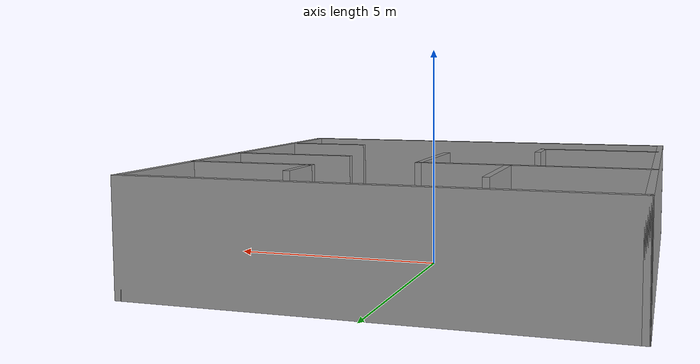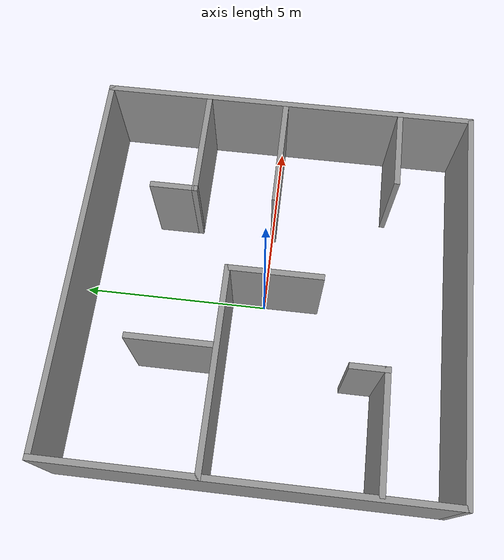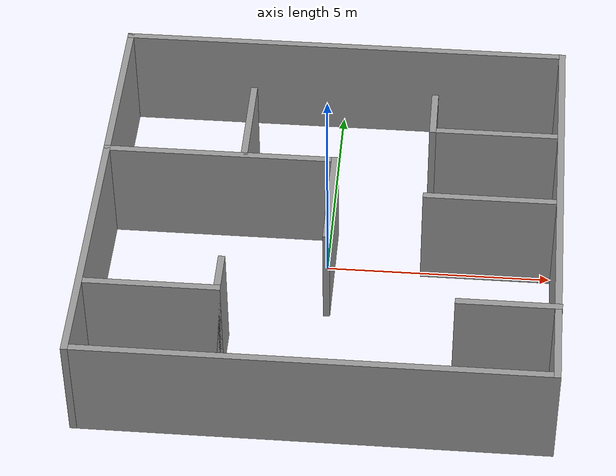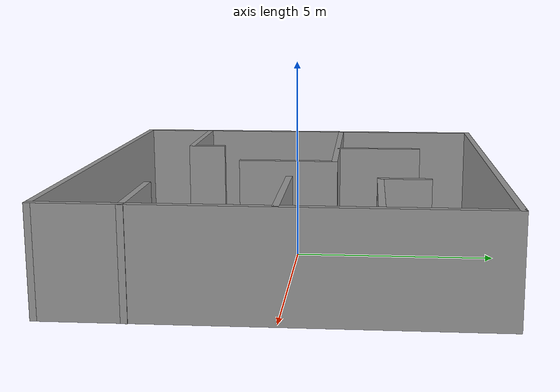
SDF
<?xml version='1.0'?>
<sdf version='1.7'>
  <model name='maze_run'>
    <pose>0.038376 -0.112216 0 0 -0 0</pose>
    <link name='Wall_11'>
      <collision name='Wall_11_Collision'>
        <geometry>
          <box>
            <size>3 0.15 2.5</size>
          </box>
        </geometry>
        <pose>0 0 1.25 0 -0 0</pose>
      </collision>
      <visual name='Wall_11_Visual'>
        <pose>0 0 1.25 0 -0 0</pose>
        <geometry>
          <box>
            <size>3 0.15 2.5</size>
          </box>
        </geometry>
        <material>
          <script>
            <uri>file://media/materials/scripts/gazebo.material</uri>
            <name>Gazebo/Grey</name>
          </script>
          <ambient>1 1 1 1</ambient>
        </material>
        <meta>
          <layer>0</layer>
        </meta>
      </visual>
      <pose>-3.55104 -3.02359 0 0 -0 0</pose>
    </link>
    <link name='Wall_12'>
      <collision name='Wall_12_Collision'>
        <geometry>
          <box>
            <size>1 0.15 2.5</size>
          </box>
        </geometry>
        <pose>0 0 1.25 0 -0 0</pose>
      </collision>
      <visual name='Wall_12_Visual'>
        <pose>0 0 1.25 0 -0 0</pose>
        <geometry>
          <box>
            <size>1 0.15 2.5</size>
          </box>
        </geometry>
        <material>
          <script>
            <uri>file://media/materials/scripts/gazebo.material</uri>
            <name>Gazebo/Grey</name>
          </script>
          <ambient>1 1 1 1</ambient>
        </material>
        <meta>
          <layer>0</layer>
        </meta>
      </visual>
      <pose>-2.12604 -2.59859 0 0 -0 1.5708</pose>
    </link>
    <link name='Wall_14'>
      <collision name='Wall_14_Collision'>
        <geometry>
          <box>
            <size>5.25 0.15 2.5</size>
          </box>
        </geometry>
        <pose>0 0 1.25 0 -0 0</pose>
      </collision>
      <visual name='Wall_14_Visual'>
        <pose>0 0 1.25 0 -0 0</pose>
        <geometry>
          <box>
            <size>5.25 0.15 2.5</size>
          </box>
        </geometry>
        <material>
          <script>
            <uri>file://media/materials/scripts/gazebo.material</uri>
            <name>Gazebo/Grey</name>
          </script>
          <ambient>1 1 1 1</ambient>
        </material>
        <meta>
          <layer>0</layer>
        </meta>
      </visual>
      <pose>-2.50695 1.06242 0 0 -0 0</pose>
    </link>
    <link name='Wall_15'>
      <collision name='Wall_15_Collision'>
        <geometry>
          <box>
            <size>2.5 0.15 2.5</size>
          </box>
        </geometry>
        <pose>0 0 1.25 0 -0 0</pose>
      </collision>
      <visual name='Wall_15_Visual'>
        <pose>0 0 1.25 0 -0 0</pose>
        <geometry>
          <box>
            <size>2.5 0.15 2.5</size>
          </box>
        </geometry>
        <material>
          <script>
            <uri>file://media/materials/scripts/gazebo.material</uri>
            <name>Gazebo/Grey</name>
          </script>
          <ambient>1 1 1 1</ambient>
        </material>
        <meta>
          <layer>0</layer>
        </meta>
      </visual>
      <pose>0.043053 -0.112575 0 0 -0 -1.5708</pose>
    </link>
    <link name='Wall_17'>
      <collision name='Wall_17_Collision'>
        <geometry>
          <box>
            <size>2.25 0.15 2.5</size>
          </box>
        </geometry>
        <pose>0 0 1.25 0 -0 0</pose>
      </collision>
      <visual name='Wall_17_Visual'>
        <pose>0 0 1.25 0 -0 0</pose>
        <geometry>
          <box>
            <size>2.25 0.15 2.5</size>
          </box>
        </geometry>
        <material>
          <script>
            <uri>file://media/materials/scripts/gazebo.material</uri>
            <name>Gazebo/Grey</name>
          </script>
          <ambient>1 1 1 1</ambient>
        </material>
        <meta>
          <layer>0</layer>
        </meta>
      </visual>
      <pose>-1.98232 2.19334 0 0 -0 1.5708</pose>
    </link>
    <link name='Wall_19'>
      <collision name='Wall_19_Collision'>
        <geometry>
          <box>
            <size>3 0.15 2.5</size>
          </box>
        </geometry>
        <pose>0 0 1.25 0 -0 0</pose>
      </collision>
      <visual name='Wall_19_Visual'>
        <pose>0 0 1.25 0 -0 0</pose>
        <geometry>
          <box>
            <size>3 0.15 2.5</size>
          </box>
        </geometry>
        <material>
          <script>
            <uri>file://media/materials/scripts/gazebo.material</uri>
            <name>Gazebo/Grey</name>
          </script>
          <ambient>1 1 1 1</ambient>
        </material>
        <meta>
          <layer>0</layer>
        </meta>
      </visual>
      <pose>3.59149 2.19518 0 0 -0 3.14159</pose>
    </link>
    <link name='Wall_20'>
      <collision name='Wall_20_Collision'>
        <geometry>
          <box>
            <size>1.25 0.15 2.5</size>
          </box>
        </geometry>
        <pose>0 0 1.25 0 -0 0</pose>
      </collision>
      <visual name='Wall_20_Visual'>
        <pose>0 0 1.25 0 -0 0</pose>
        <geometry>
          <box>
            <size>1.25 0.15 2.5</size>
          </box>
        </geometry>
        <material>
          <script>
            <uri>file://media/materials/scripts/gazebo.material</uri>
            <name>Gazebo/Grey</name>
          </script>
          <ambient>1 1 1 1</ambient>
        </material>
        <meta>
          <layer>0</layer>
        </meta>
      </visual>
      <pose>2.16649 2.74518 0 0 -0 1.5708</pose>
    </link>
    <link name='Wall_22'>
      <collision name='Wall_22_Collision'>
        <geometry>
          <box>
            <size>3 0.15 2.5</size>
          </box>
        </geometry>
        <pose>0 0 1.25 0 -0 0</pose>
      </collision>
      <visual name='Wall_22_Visual'>
        <pose>0 0 1.25 0 -0 0</pose>
        <geometry>
          <box>
            <size>3 0.15 2.5</size>
          </box>
        </geometry>
        <material>
          <script>
            <uri>file://media/materials/scripts/gazebo.material</uri>
            <name>Gazebo/Grey</name>
          </script>
          <ambient>1 1 1 1</ambient>
        </material>
        <meta>
          <layer>0</layer>
        </meta>
      </visual>
      <pose>3.55104 0.091491 0 0 -0 3.14159</pose>
    </link>
    <link name='Wall_24'>
      <collision name='Wall_24_Collision'>
        <geometry>
          <box>
            <size>2.25 0.15 2.5</size>
          </box>
        </geometry>
        <pose>0 0 1.25 0 -0 0</pose>
      </collision>
      <visual name='Wall_24_Visual'>
        <pose>0 0 1.25 0 -0 0</pose>
        <geometry>
          <box>
            <size>2.25 0.15 2.5</size>
          </box>
        </geometry>
        <material>
          <script>
            <uri>file://media/materials/scripts/gazebo.material</uri>
            <name>Gazebo/Grey</name>
          </script>
          <ambient>1 1 1 1</ambient>
        </material>
        <meta>
          <layer>0</layer>
        </meta>
      </visual>
      <pose>4.00695 -3.02359 0 0 -0 3.14159</pose>
    </link>
    <link name='Wall_6'>
      <collision name='Wall_6_Collision'>
        <geometry>
          <box>
            <size>10 0.15 2.5</size>
          </box>
        </geometry>
        <pose>0 0 1.25 0 -0 0</pose>
      </collision>
      <visual name='Wall_6_Visual'>
        <pose>0 0 1.25 0 -0 0</pose>
        <geometry>
          <box>
            <size>10 0.15 2.5</size>
          </box>
        </geometry>
        <material>
          <script>
            <uri>file://media/materials/scripts/gazebo.material</uri>
            <name>Gazebo/Grey</name>
          </script>
          <ambient>1 1 1 1</ambient>
        </material>
        <meta>
          <layer>0</layer>
        </meta>
      </visual>
      <pose>-5.05695 -0 0 0 -0 1.5708</pose>
    </link>
    <link name='Wall_7'>
      <collision name='Wall_7_Collision'>
        <geometry>
          <box>
            <size>10.25 0.15 2.5</size>
          </box>
        </geometry>
        <pose>0 0 1.25 0 -0 0</pose>
      </collision>
      <visual name='Wall_7_Visual'>
        <pose>0 0 1.25 0 -0 0</pose>
        <geometry>
          <box>
            <size>10.25 0.15 2.5</size>
          </box>
        </geometry>
        <material>
          <script>
            <uri>file://media/materials/scripts/gazebo.material</uri>
            <name>Gazebo/Grey</name>
          </script>
          <ambient>1 1 1 1</ambient>
        </material>
        <meta>
          <layer>0</layer>
        </meta>
      </visual>
      <pose>-0.006947 4.925 0 0 -0 0</pose>
    </link>
    <link name='Wall_8'>
      <collision name='Wall_8_Collision'>
        <geometry>
          <box>
            <size>10 0.15 2.5</size>
          </box>
        </geometry>
        <pose>0 0 1.25 0 -0 0</pose>
      </collision>
      <visual name='Wall_8_Visual'>
        <pose>0 0 1.25 0 -0 0</pose>
        <geometry>
          <box>
            <size>10 0.15 2.5</size>
          </box>
        </geometry>
        <material>
          <script>
            <uri>file://media/materials/scripts/gazebo.material</uri>
            <name>Gazebo/Grey</name>
          </script>
          <ambient>1 1 1 1</ambient>
        </material>
        <meta>
          <layer>0</layer>
        </meta>
      </visual>
      <pose>5.04305 -0 0 0 -0 -1.5708</pose>
    </link>
    <link name='Wall_9'>
      <collision name='Wall_9_Collision'>
        <geometry>
          <box>
            <size>10.25 0.15 2.5</size>
          </box>
        </geometry>
        <pose>0 0 1.25 0 -0 0</pose>
      </collision>
      <visual name='Wall_9_Visual'>
        <pose>0 0 1.25 0 -0 0</pose>
        <geometry>
          <box>
            <size>10.25 0.15 2.5</size>
          </box>
        </geometry>
        <material>
          <script>
            <uri>file://media/materials/scripts/gazebo.material</uri>
            <name>Gazebo/Grey</name>
          </script>
          <ambient>1 1 1 1</ambient>
        </material>
        <meta>
          <layer>0</layer>
        </meta>
      </visual>
      <pose>-0.006947 -4.925 0 0 -0 3.14159</pose>
    </link>
    <static>1</static>
  </model>
</sdf>
